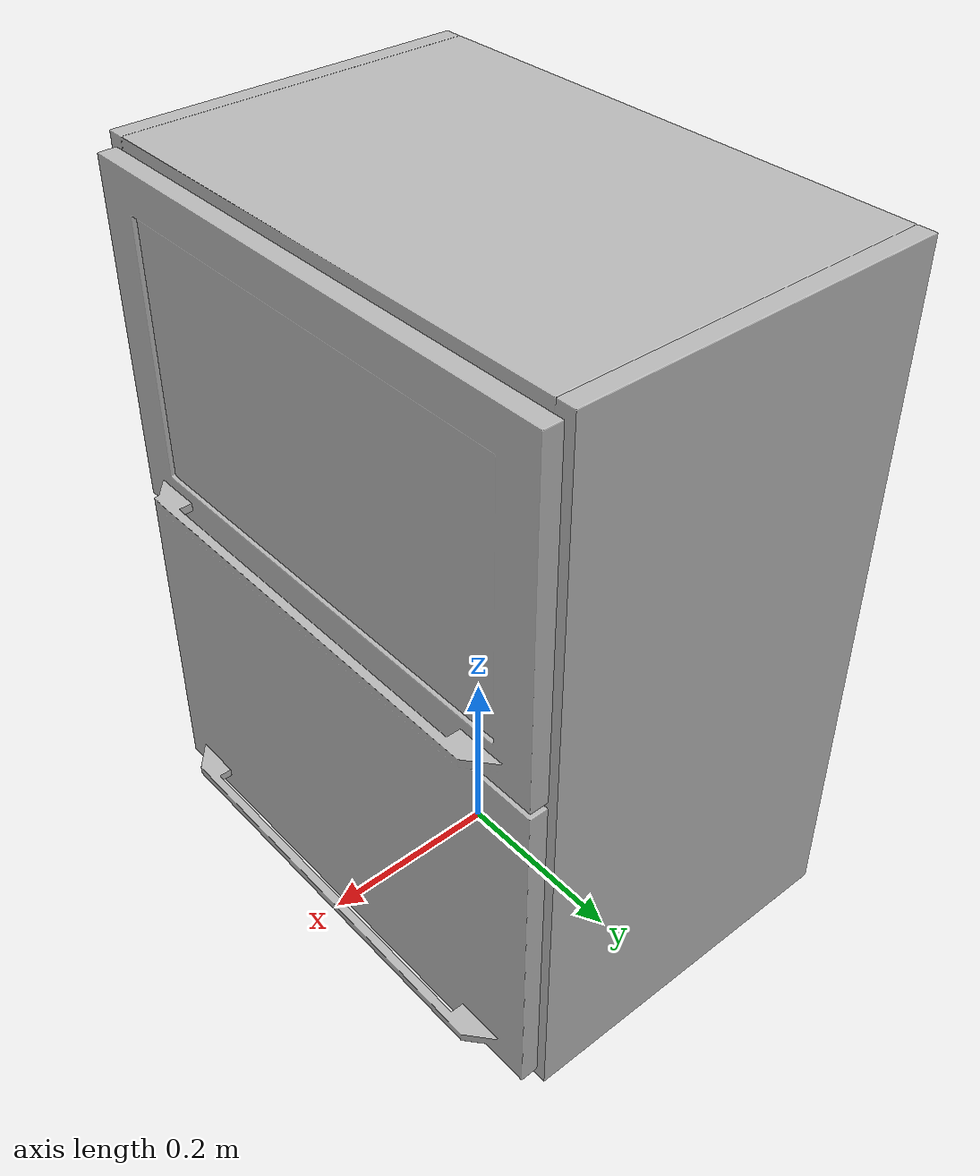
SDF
<?xml version='1.0'?>
<sdf version='1.4'>
  <model name='286'>
    <pose>0 0 0 0 0 0</pose>
    <static>true</static>
    <link name='link'>
      <collision name='collision'>
        <pose>0 0 0 0 0 0</pose>
        <geometry>
          <box>
            <size>0.433989 0.6 2</size>
          </box>
        </geometry>
      </collision>
      <visual name='visual'>
        <pose>0 0 0 0 0 0</pose>
        <geometry>
          <mesh><uri>model://286/286.dae</uri></mesh>
        </geometry>
      </visual>
    </link>
  </model>
</sdf>
